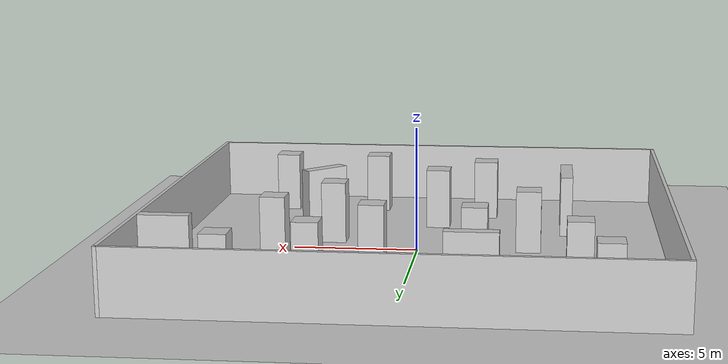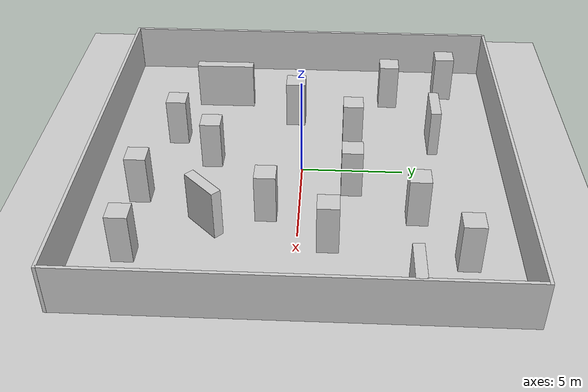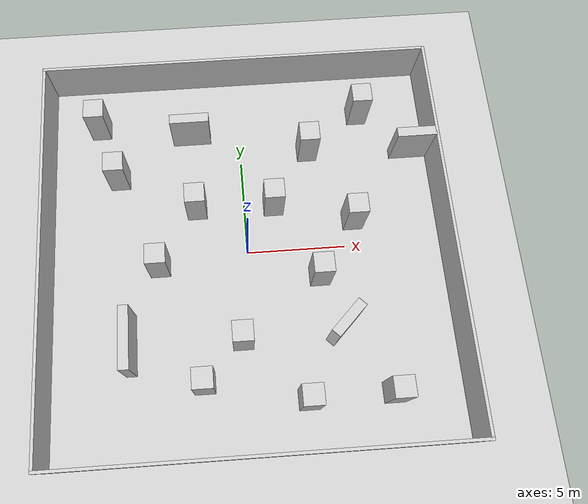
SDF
<?xml version="1.0" ?>
<sdf version="1.9">
  <world name="default">

    <physics name="1ms" type="ignore">
      <max_step_size>0.001</max_step_size>
      <real_time_factor>1.0</real_time_factor>
    </physics>

    <plugin filename="gz-sim-physics-system"
      name="gz::sim::systems::Physics">
    </plugin>

    <plugin
      filename="gz-sim-sensors-system"
      name="gz::sim::systems::Sensors">
      <render_engine>ogre2</render_engine>
    </plugin>

    <plugin filename="gz-sim-user-commands-system"
      name="gz::sim::systems::UserCommands">
    </plugin>
    <plugin filename="gz-sim-scene-broadcaster-system"
      name="gz::sim::systems::SceneBroadcaster">
    </plugin>

    <scene>
      <ambient>1.0 1.0 1.0</ambient>
      <background>0.7 0.7 0.7 1</background>
      <shadows>false</shadows>
    </scene>

    <light type="directional" name="sun">
      <cast_shadows>false</cast_shadows>
      <pose>0 0 10 0 0 0</pose>
      <diffuse>1 1 1 1</diffuse>
      <specular>0.0 0.0 0.0 1</specular>
      <direction>-0.5 0.1 -0.9</direction>
    </light>

    <!-- AXES -->

    <!-- ================= GROUND PLANE ================= -->
    <model name="ground_plane">
      <static>true</static>
      <pose>0 0 0 0 0 0</pose>
      <link name="link">
        <collision name="collision">
          <geometry>
            <plane><normal>0 0 1</normal><size>20 20</size></plane>
          </geometry>
        </collision>
        <visual name="visual">
          <cast_shadows>false</cast_shadows>
          <geometry>
            <plane><normal>0 0 1</normal><size>20 20</size></plane>
          </geometry>
          <material>
            <ambient>0.8 0.8 0.8 1</ambient>
            <diffuse>0.8 0.8 0.8 1</diffuse>
            <specular>0.0 0.0 0.0 1</specular>
            <pbr><metal>
              <albedo_map>file://materials/textures/plank_walls.jpg</albedo_map>
              <roughness>1.0</roughness>
              <metalness>0</metalness>
            </metal></pbr>
          </material>
        </visual>
      </link>
    </model>

    <!-- ================= OUTER WALLS + INNER WALLS + BOXES ================= -->

    <model name="wall_north">
      <static>true</static>
      <pose>0 10 0 0 0 3.14159</pose>
      <link name="link">
        <collision name="collision">
          <pose>0 0 1.25 0 0 0</pose>
          <geometry><box><size>20.15 0.15 2.5</size></box></geometry>
        </collision>
        <visual name="visual">
          <pose>0 0 1.25 0 0 0</pose>
          <cast_shadows>false</cast_shadows>
          <geometry><box><size>20.15 0.15 2.5</size></box></geometry>
          <material>
            <ambient>0.8 0.8 0.8 1</ambient>
            <diffuse>0.8 0.8 0.8 1</diffuse>
            <specular>0.0 0.0 0.0 1</specular>
            <pbr><metal>
              <albedo_map>file://materials/textures/plaster_bricks.jpg</albedo_map>
              <roughness>1.0</roughness>
              <metalness>0</metalness>
            </metal></pbr>
          </material>
        </visual>
      </link>
    </model>

    <model name="wall_south">
      <static>true</static>
      <pose>0 -10 0 0 0 0.0</pose>
      <link name="link">
        <collision name="collision">
          <pose>0 0 1.25 0 0 0</pose>
          <geometry><box><size>20.15 0.15 2.5</size></box></geometry>
        </collision>
        <visual name="visual">
          <pose>0 0 1.25 0 0 0</pose>
          <cast_shadows>false</cast_shadows>
          <geometry><box><size>20.15 0.15 2.5</size></box></geometry>
          <material>
            <ambient>0.8 0.8 0.8 1</ambient>
            <diffuse>0.8 0.8 0.8 1</diffuse>
            <specular>0.0 0.0 0.0 1</specular>
            <pbr><metal>
              <albedo_map>file://materials/textures/plaster_bricks.jpg</albedo_map>
              <roughness>1.0</roughness>
              <metalness>0</metalness>
            </metal></pbr>
          </material>
        </visual>
      </link>
    </model>

    <model name="wall_west">
      <static>true</static>
      <pose>-10 0 0 0 0 -1.5708</pose>
      <link name="link">
        <collision name="collision">
          <pose>0 0 1.25 0 0 0</pose>
          <geometry><box><size>20.15 0.15 2.5</size></box></geometry>
        </collision>
        <visual name="visual">
          <pose>0 0 1.25 0 0 0</pose>
          <cast_shadows>false</cast_shadows>
          <geometry><box><size>20.15 0.15 2.5</size></box></geometry>
          <material>
            <ambient>0.8 0.8 0.8 1</ambient>
            <diffuse>0.8 0.8 0.8 1</diffuse>
            <specular>0.0 0.0 0.0 1</specular>
            <pbr><metal>
              <albedo_map>file://materials/textures/plaster_bricks.jpg</albedo_map>
              <roughness>1.0</roughness>
              <metalness>0</metalness>
            </metal></pbr>
          </material>
        </visual>
      </link>
    </model>

    <model name="wall_east">
      <static>true</static>
      <pose>10 0 0 0 0 -1.5708</pose>
      <link name="link">
        <collision name="collision">
          <pose>0 0 1.25 0 0 0</pose>
          <geometry><box><size>20.15 0.15 2.5</size></box></geometry>
        </collision>
        <visual name="visual">
          <pose>0 0 1.25 0 0 0</pose>
          <cast_shadows>false</cast_shadows>
          <geometry><box><size>20.15 0.15 2.5</size></box></geometry>
          <material>
            <ambient>0.8 0.8 0.8 1</ambient>
            <diffuse>0.8 0.8 0.8 1</diffuse>
            <specular>0.0 0.0 0.0 1</specular>
            <pbr><metal>
              <albedo_map>file://materials/textures/plaster_bricks.jpg</albedo_map>
              <roughness>1.0</roughness>
              <metalness>0</metalness>
            </metal></pbr>
          </material>
        </visual>
      </link>
    </model>

    <model name="wall_inner_11">
      <static>true</static>
      <pose>-2.56518 6.61937 0 0 0 0.0</pose>
      <link name="link">
        <collision name="collision">
          <pose>0 0 1.25 0 0 0</pose>
          <geometry><box><size>2.0 0.5 2.5</size></box></geometry>
        </collision>
        <visual name="visual">
          <pose>0 0 1.25 0 0 0</pose>
          <cast_shadows>false</cast_shadows>
          <geometry><box><size>2.0 0.5 2.5</size></box></geometry>
          <material>
            <ambient>0.8 0.8 0.8 1</ambient>
            <diffuse>0.8 0.8 0.8 1</diffuse>
            <specular>0.0 0.0 0.0 1</specular>
            <pbr><metal>
              <albedo_map>file://materials/textures/plaster_bricks.jpg</albedo_map>
              <roughness>1.0</roughness>
              <metalness>0</metalness>
            </metal></pbr>
          </material>
        </visual>
      </link>
    </model>

    <model name="wall_inner_15">
      <static>true</static>
      <pose>8.97432 5.07655 0 0 0 3.14159</pose>
      <link name="link">
        <collision name="collision">
          <pose>0 0 1.25 0 0 0</pose>
          <geometry><box><size>2.0 0.5 2.5</size></box></geometry>
        </collision>
        <visual name="visual">
          <pose>0 0 1.25 0 0 0</pose>
          <cast_shadows>false</cast_shadows>
          <geometry><box><size>2.0 0.5 2.5</size></box></geometry>
          <material>
            <ambient>0.8 0.8 0.8 1</ambient>
            <diffuse>0.8 0.8 0.8 1</diffuse>
            <specular>0.0 0.0 0.0 1</specular>
            <pbr><metal>
              <albedo_map>file://materials/textures/plaster_bricks.jpg</albedo_map>
              <roughness>1.0</roughness>
              <metalness>0</metalness>
            </metal></pbr>
          </material>
        </visual>
      </link>
    </model>

    <model name="wall_inner_17">
      <static>true</static>
      <pose>4.41821 -4.22381 0 0 0 0.785398</pose>
      <link name="link">
        <collision name="collision">
          <pose>0 0 1.25 0 0 0</pose>
          <geometry><box><size>2.0 0.5 2.5</size></box></geometry>
        </collision>
        <visual name="visual">
          <pose>0 0 1.25 0 0 0</pose>
          <cast_shadows>false</cast_shadows>
          <geometry><box><size>2.0 0.5 2.5</size></box></geometry>
          <material>
            <ambient>0.8 0.8 0.8 1</ambient>
            <diffuse>0.8 0.8 0.8 1</diffuse>
            <specular>0.0 0.0 0.0 1</specular>
            <pbr><metal>
              <albedo_map>file://materials/textures/plaster_bricks.jpg</albedo_map>
              <roughness>1.0</roughness>
              <metalness>0</metalness>
            </metal></pbr>
          </material>
        </visual>
      </link>
    </model>

    <model name="wall_inner_8">
      <static>true</static>
      <pose>-6.0226 -4.4198 0 0 0 -1.5708</pose>
      <link name="link">
        <collision name="collision">
          <pose>0 0 1.25 0 0 0</pose>
          <geometry><box><size>3.0 0.5 2.5</size></box></geometry>
        </collision>
        <visual name="visual">
          <pose>0 0 1.25 0 0 0</pose>
          <cast_shadows>false</cast_shadows>
          <geometry><box><size>3.0 0.5 2.5</size></box></geometry>
          <material>
            <ambient>0.8 0.8 0.8 1</ambient>
            <diffuse>0.8 0.8 0.8 1</diffuse>
            <specular>0.0 0.0 0.0 1</specular>
            <pbr><metal>
              <albedo_map>file://materials/textures/plaster_bricks.jpg</albedo_map>
              <roughness>1.0</roughness>
              <metalness>0</metalness>
            </metal></pbr>
          </material>
        </visual>
      </link>
    </model>

    <model name="unit_box">
      <static>true</static>
      <pose>-6.4594 4.46979 1.25 0 0 0</pose>
      <link name="link">
        <collision name="collision">
          <geometry><box><size>1 1 2.5</size></box></geometry>
        </collision>
        <visual name="visual">
          <cast_shadows>false</cast_shadows>
          <geometry><box><size>1 1 2.5</size></box></geometry>
          <material>
            <ambient>0.8 0.8 0.8 1</ambient>
            <diffuse>0.8 0.8 0.8 1</diffuse>
            <specular>0.0 0.0 0.0 1</specular>
            <pbr><metal>
              <albedo_map>file://materials/textures/plaster_bricks.jpg</albedo_map>
              <roughness>1.0</roughness>
              <metalness>0</metalness>
            </metal></pbr>
          </material>
        </visual>
      </link>
    </model>

    <model name="unit_box_0">
      <static>true</static>
      <pose>3.52928 5.47733 1.25 0 0 0</pose>
      <link name="link">
        <collision name="collision">
          <geometry><box><size>1 1 2.5</size></box></geometry>
        </collision>
        <visual name="visual">
          <cast_shadows>false</cast_shadows>
          <geometry><box><size>1 1 2.5</size></box></geometry>
          <material>
            <ambient>0.8 0.8 0.8 1</ambient>
            <diffuse>0.8 0.8 0.8 1</diffuse>
            <specular>0.0 0.0 0.0 1</specular>
            <pbr><metal>
              <albedo_map>file://materials/textures/plaster_bricks.jpg</albedo_map>
              <roughness>1.0</roughness>
              <metalness>0</metalness>
            </metal></pbr>
          </material>
        </visual>
      </link>
    </model>

    <model name="unit_box_1">
      <static>true</static>
      <pose>5.52711 1.39909 1.25 0 0 0</pose>
      <link name="link">
        <collision name="collision">
          <geometry><box><size>1 1 2.5</size></box></geometry>
        </collision>
        <visual name="visual">
          <cast_shadows>false</cast_shadows>
          <geometry><box><size>1 1 2.5</size></box></geometry>
          <material>
            <ambient>0.8 0.8 0.8 1</ambient>
            <diffuse>0.8 0.8 0.8 1</diffuse>
            <specular>0.0 0.0 0.0 1</specular>
            <pbr><metal>
              <albedo_map>file://materials/textures/plaster_bricks.jpg</albedo_map>
              <roughness>1.0</roughness>
              <metalness>0</metalness>
            </metal></pbr>
          </material>
        </visual>
      </link>
    </model>

    <model name="unit_box_2">
      <static>true</static>
      <pose>-2.47484 2.50954 1.25 0 0 0</pose>
      <link name="link">
        <collision name="collision">
          <geometry><box><size>1 1 2.5</size></box></geometry>
        </collision>
        <visual name="visual">
          <cast_shadows>false</cast_shadows>
          <geometry><box><size>1 1 2.5</size></box></geometry>
          <material>
            <ambient>0.8 0.8 0.8 1</ambient>
            <diffuse>0.8 0.8 0.8 1</diffuse>
            <specular>0.0 0.0 0.0 1</specular>
            <pbr><metal>
              <albedo_map>file://materials/textures/plaster_bricks.jpg</albedo_map>
              <roughness>1.0</roughness>
              <metalness>0</metalness>
            </metal></pbr>
          </material>
        </visual>
      </link>
    </model>

    <model name="unit_box_3">
      <static>true</static>
      <pose>1.49096 2.45534 1.25 0 0 0</pose>
      <link name="link">
        <collision name="collision">
          <geometry><box><size>1 1 2.5</size></box></geometry>
        </collision>
        <visual name="visual">
          <cast_shadows>false</cast_shadows>
          <geometry><box><size>1 1 2.5</size></box></geometry>
          <material>
            <ambient>0.8 0.8 0.8 1</ambient>
            <diffuse>0.8 0.8 0.8 1</diffuse>
            <specular>0.0 0.0 0.0 1</specular>
            <pbr><metal>
              <albedo_map>file://materials/textures/plaster_bricks.jpg</albedo_map>
              <roughness>1.0</roughness>
              <metalness>0</metalness>
            </metal></pbr>
          </material>
        </visual>
      </link>
    </model>

    <model name="unit_box_4">
      <static>true</static>
      <pose>-4.49036 -0.499567 1.25 0 0 0</pose>
      <link name="link">
        <collision name="collision">
          <geometry><box><size>1 1 2.5</size></box></geometry>
        </collision>
        <visual name="visual">
          <cast_shadows>false</cast_shadows>
          <geometry><box><size>1 1 2.5</size></box></geometry>
          <material>
            <ambient>0.8 0.8 0.8 1</ambient>
            <diffuse>0.8 0.8 0.8 1</diffuse>
            <specular>0.0 0.0 0.0 1</specular>
            <pbr><metal>
              <albedo_map>file://materials/textures/plaster_bricks.jpg</albedo_map>
              <roughness>1.0</roughness>
              <metalness>0</metalness>
            </metal></pbr>
          </material>
        </visual>
      </link>
    </model>

    <model name="unit_box_5">
      <static>true</static>
      <pose>-2.50607 -6.50179 1.25 0 0 0</pose>
      <link name="link">
        <collision name="collision">
          <geometry><box><size>1 1 2.5</size></box></geometry>
        </collision>
        <visual name="visual">
          <cast_shadows>false</cast_shadows>
          <geometry><box><size>1 1 2.5</size></box></geometry>
          <material>
            <ambient>0.8 0.8 0.8 1</ambient>
            <diffuse>0.8 0.8 0.8 1</diffuse>
            <specular>0.0 0.0 0.0 1</specular>
            <pbr><metal>
              <albedo_map>file://materials/textures/plaster_bricks.jpg</albedo_map>
              <roughness>1.0</roughness>
              <metalness>0</metalness>
            </metal></pbr>
          </material>
        </visual>
      </link>
    </model>

    <model name="unit_box_6">
      <static>true</static>
      <pose>-0.541231 -4.49819 1.25 0 0 0</pose>
      <link name="link">
        <collision name="collision">
          <geometry><box><size>1 1 2.5</size></box></geometry>
        </collision>
        <visual name="visual">
          <cast_shadows>false</cast_shadows>
          <geometry><box><size>1 1 2.5</size></box></geometry>
          <material>
            <ambient>0.8 0.8 0.8 1</ambient>
            <diffuse>0.8 0.8 0.8 1</diffuse>
            <specular>0.0 0.0 0.0 1</specular>
            <pbr><metal>
              <albedo_map>file://materials/textures/plaster_bricks.jpg</albedo_map>
              <roughness>1.0</roughness>
              <metalness>0</metalness>
            </metal></pbr>
          </material>
        </visual>
      </link>
    </model>

    <model name="unit_box_7">
      <static>true</static>
      <pose>6.50569 -7.51344 1.25 0 0 0</pose>
      <link name="link">
        <collision name="collision">
          <geometry><box><size>1 1 2.5</size></box></geometry>
        </collision>
        <visual name="visual">
          <cast_shadows>false</cast_shadows>
          <geometry><box><size>1 1 2.5</size></box></geometry>
          <material>
            <ambient>0.8 0.8 0.8 1</ambient>
            <diffuse>0.8 0.8 0.8 1</diffuse>
            <specular>0.0 0.0 0.0 1</specular>
            <pbr><metal>
              <albedo_map>file://materials/textures/plaster_bricks.jpg</albedo_map>
              <roughness>1.0</roughness>
              <metalness>0</metalness>
            </metal></pbr>
          </material>
        </visual>
      </link>
    </model>

    <model name="unit_box_8">
      <static>true</static>
      <pose>2.40914 -7.57412 1.25 0 0 0</pose>
      <link name="link">
        <collision name="collision">
          <geometry><box><size>1 1 2.5</size></box></geometry>
        </collision>
        <visual name="visual">
          <cast_shadows>false</cast_shadows>
          <geometry><box><size>1 1 2.5</size></box></geometry>
          <material>
            <ambient>0.8 0.8 0.8 1</ambient>
            <diffuse>0.8 0.8 0.8 1</diffuse>
            <specular>0.0 0.0 0.0 1</specular>
            <pbr><metal>
              <albedo_map>file://materials/textures/plaster_bricks.jpg</albedo_map>
              <roughness>1.0</roughness>
              <metalness>0</metalness>
            </metal></pbr>
          </material>
        </visual>
      </link>
    </model>

    <model name="unit_box_9">
      <static>true</static>
      <pose>6.44918 7.51582 1.25 0 0 0</pose>
      <link name="link">
        <collision name="collision">
          <geometry><box><size>1 1 2.5</size></box></geometry>
        </collision>
        <visual name="visual">
          <cast_shadows>false</cast_shadows>
          <geometry><box><size>1 1 2.5</size></box></geometry>
          <material>
            <ambient>0.8 0.8 0.8 1</ambient>
            <diffuse>0.8 0.8 0.8 1</diffuse>
            <specular>0.0 0.0 0.0 1</specular>
            <pbr><metal>
              <albedo_map>file://materials/textures/plaster_bricks.jpg</albedo_map>
              <roughness>1.0</roughness>
              <metalness>0</metalness>
            </metal></pbr>
          </material>
        </visual>
      </link>
    </model>

    <model name="unit_box_10">
      <static>true</static>
      <pose>3.53659 -1.49399 1.25 0 0 0</pose>
      <link name="link">
        <collision name="collision">
          <geometry><box><size>1 1 2.5</size></box></geometry>
        </collision>
        <visual name="visual">
          <cast_shadows>false</cast_shadows>
          <geometry><box><size>1 1 2.5</size></box></geometry>
          <material>
            <ambient>0.8 0.8 0.8 1</ambient>
            <diffuse>0.8 0.8 0.8 1</diffuse>
            <specular>0.0 0.0 0.0 1</specular>
            <pbr><metal>
              <albedo_map>file://materials/textures/plaster_bricks.jpg</albedo_map>
              <roughness>1.0</roughness>
              <metalness>0</metalness>
            </metal></pbr>
          </material>
        </visual>
      </link>
    </model>

    <model name="unit_box_11">
      <static>true</static>
      <pose>-7.45379 7.53373 1.25 0 0 0</pose>
      <link name="link">
        <collision name="collision">
          <geometry><box><size>1 1 2.5</size></box></geometry>
        </collision>
        <visual name="visual">
          <cast_shadows>false</cast_shadows>
          <geometry><box><size>1 1 2.5</size></box></geometry>
          <material>
            <ambient>0.8 0.8 0.8 1</ambient>
            <diffuse>0.8 0.8 0.8 1</diffuse>
            <specular>0.0 0.0 0.0 1</specular>
            <pbr><metal>
              <albedo_map>file://materials/textures/plaster_bricks.jpg</albedo_map>
              <roughness>1.0</roughness>
              <metalness>0</metalness>
            </metal></pbr>
          </material>
        </visual>
      </link>
    </model>

  </world>
</sdf>
